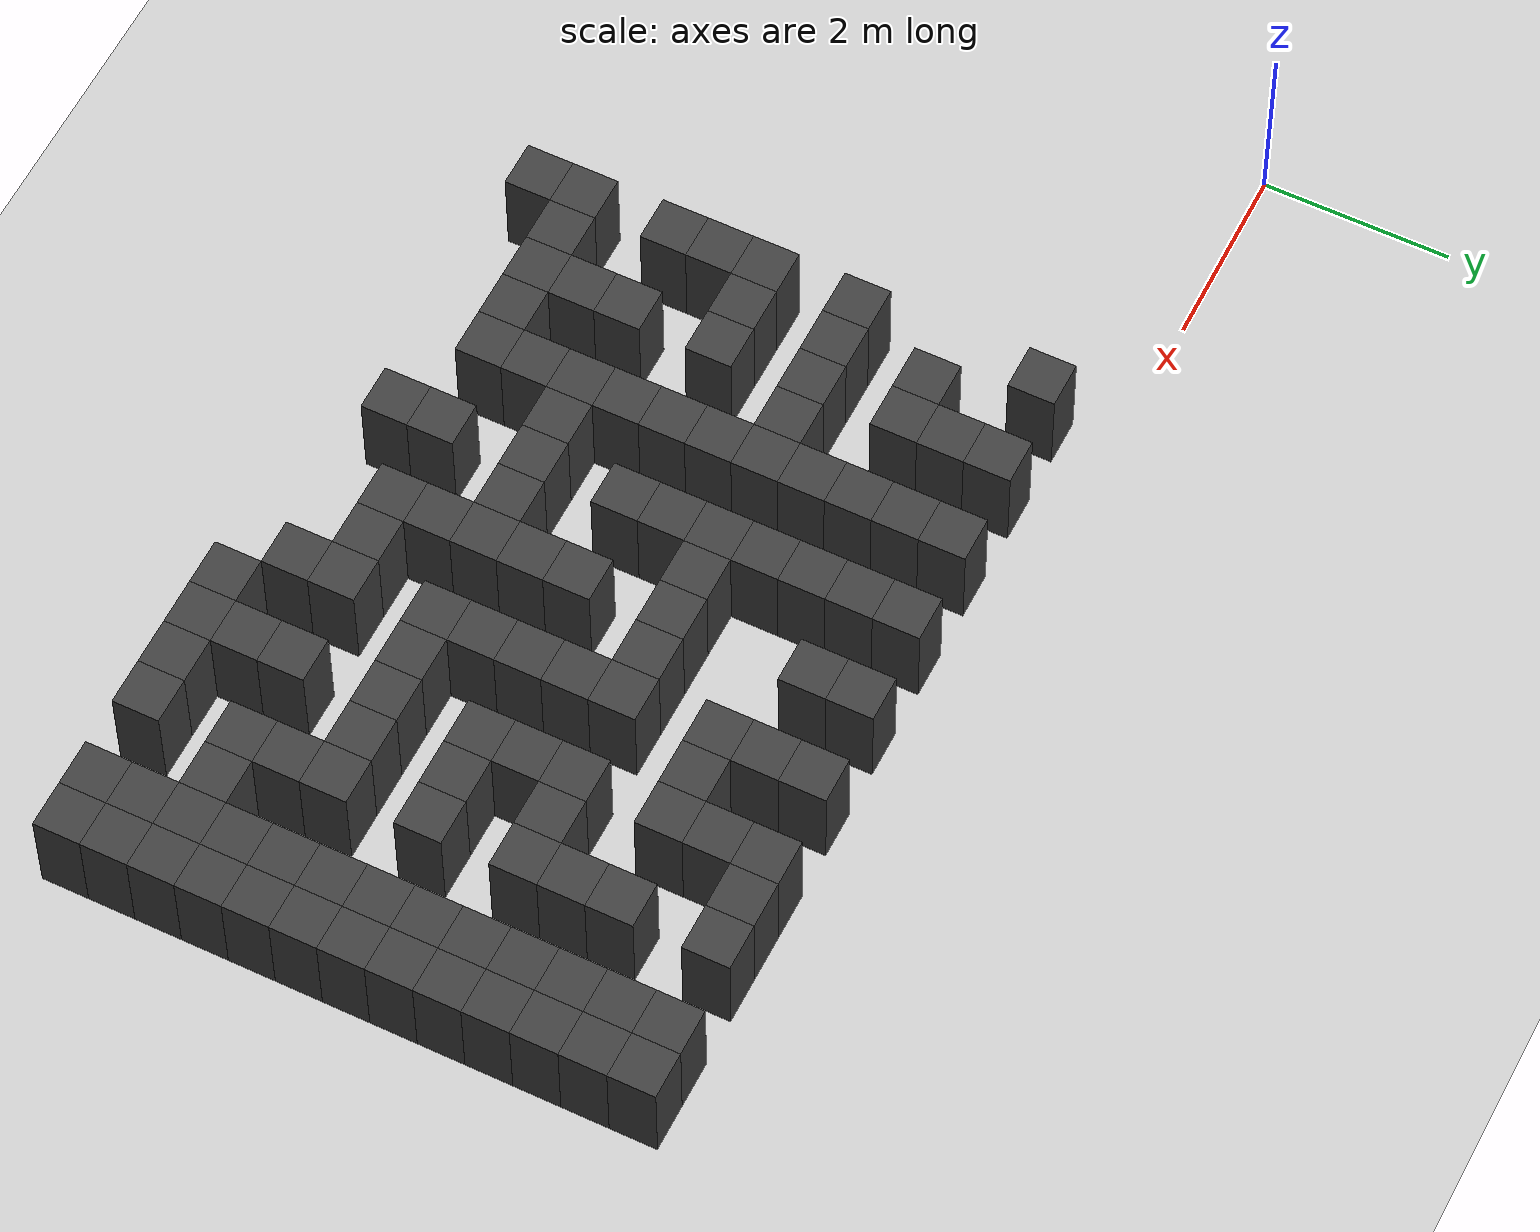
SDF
<sdf version="1.7">
 <world name="map_18596">
  <model name="ground_plane">
   <static>true</static>
   <link name="link">
    <collision name="collision">
     <geometry><plane><normal>0 0 1</normal><size>200 200</size></plane></geometry>
    </collision>
    <visual name="visual">
     <geometry><plane><normal>0 0 1</normal><size>200 200</size></plane></geometry>
     <material><ambient>0.8 0.8 0.8 1</ambient><diffuse>0.8 0.8 0.8 1</diffuse></material>
    </visual>
   </link>
  </model>
  <model name="maze_environment">
   <static>true</static>
   <link name="wall_685">
    <pose>3.750 -0.750 0.500 0 0 0</pose>
    <collision name="col"><geometry><box><size>0.5 0.5 1.0</size></box></geometry></collision>
    <visual name="vis">
     <geometry><box><size>0.5 0.5 1.0</size></box></geometry>
     <material><ambient>0.15 0.15 0.15 1</ambient><diffuse>0.25 0.25 0.25 1</diffuse></material>
    </visual>
   </link>
   <link name="wall_686">
    <pose>4.750 -0.750 0.500 0 0 0</pose>
    <collision name="col"><geometry><box><size>0.5 0.5 1.0</size></box></geometry></collision>
    <visual name="vis">
     <geometry><box><size>0.5 0.5 1.0</size></box></geometry>
     <material><ambient>0.15 0.15 0.15 1</ambient><diffuse>0.25 0.25 0.25 1</diffuse></material>
    </visual>
   </link>
   <link name="wall_687">
    <pose>5.750 -0.750 0.500 0 0 0</pose>
    <collision name="col"><geometry><box><size>0.5 0.5 1.0</size></box></geometry></collision>
    <visual name="vis">
     <geometry><box><size>0.5 0.5 1.0</size></box></geometry>
     <material><ambient>0.15 0.15 0.15 1</ambient><diffuse>0.25 0.25 0.25 1</diffuse></material>
    </visual>
   </link>
   <link name="wall_688">
    <pose>6.750 -0.750 0.500 0 0 0</pose>
    <collision name="col"><geometry><box><size>0.5 0.5 1.0</size></box></geometry></collision>
    <visual name="vis">
     <geometry><box><size>0.5 0.5 1.0</size></box></geometry>
     <material><ambient>0.15 0.15 0.15 1</ambient><diffuse>0.25 0.25 0.25 1</diffuse></material>
    </visual>
   </link>
   <link name="wall_689">
    <pose>7.750 -0.750 0.500 0 0 0</pose>
    <collision name="col"><geometry><box><size>0.5 0.5 1.0</size></box></geometry></collision>
    <visual name="vis">
     <geometry><box><size>0.5 0.5 1.0</size></box></geometry>
     <material><ambient>0.15 0.15 0.15 1</ambient><diffuse>0.25 0.25 0.25 1</diffuse></material>
    </visual>
   </link>
   <link name="wall_690">
    <pose>8.750 -0.750 0.500 0 0 0</pose>
    <collision name="col"><geometry><box><size>0.5 0.5 1.0</size></box></geometry></collision>
    <visual name="vis">
     <geometry><box><size>0.5 0.5 1.0</size></box></geometry>
     <material><ambient>0.15 0.15 0.15 1</ambient><diffuse>0.25 0.25 0.25 1</diffuse></material>
    </visual>
   </link>
   <link name="wall_691">
    <pose>9.750 -0.750 0.500 0 0 0</pose>
    <collision name="col"><geometry><box><size>0.5 0.5 1.0</size></box></geometry></collision>
    <visual name="vis">
     <geometry><box><size>0.5 0.5 1.0</size></box></geometry>
     <material><ambient>0.15 0.15 0.15 1</ambient><diffuse>0.25 0.25 0.25 1</diffuse></material>
    </visual>
   </link>
   <link name="wall_692">
    <pose>10.250 -0.750 0.500 0 0 0</pose>
    <collision name="col"><geometry><box><size>0.5 0.5 1.0</size></box></geometry></collision>
    <visual name="vis">
     <geometry><box><size>0.5 0.5 1.0</size></box></geometry>
     <material><ambient>0.15 0.15 0.15 1</ambient><diffuse>0.25 0.25 0.25 1</diffuse></material>
    </visual>
   </link>
   <link name="wall_693">
    <pose>10.750 -0.750 0.500 0 0 0</pose>
    <collision name="col"><geometry><box><size>0.5 0.5 1.0</size></box></geometry></collision>
    <visual name="vis">
     <geometry><box><size>0.5 0.5 1.0</size></box></geometry>
     <material><ambient>0.15 0.15 0.15 1</ambient><diffuse>0.25 0.25 0.25 1</diffuse></material>
    </visual>
   </link>
   <link name="wall_694">
    <pose>11.750 -0.750 0.500 0 0 0</pose>
    <collision name="col"><geometry><box><size>0.5 0.5 1.0</size></box></geometry></collision>
    <visual name="vis">
     <geometry><box><size>0.5 0.5 1.0</size></box></geometry>
     <material><ambient>0.15 0.15 0.15 1</ambient><diffuse>0.25 0.25 0.25 1</diffuse></material>
    </visual>
   </link>
   <link name="wall_695">
    <pose>12.250 -0.750 0.500 0 0 0</pose>
    <collision name="col"><geometry><box><size>0.5 0.5 1.0</size></box></geometry></collision>
    <visual name="vis">
     <geometry><box><size>0.5 0.5 1.0</size></box></geometry>
     <material><ambient>0.15 0.15 0.15 1</ambient><diffuse>0.25 0.25 0.25 1</diffuse></material>
    </visual>
   </link>
   <link name="wall_707">
    <pose>4.750 -1.250 0.500 0 0 0</pose>
    <collision name="col"><geometry><box><size>0.5 0.5 1.0</size></box></geometry></collision>
    <visual name="vis">
     <geometry><box><size>0.5 0.5 1.0</size></box></geometry>
     <material><ambient>0.15 0.15 0.15 1</ambient><diffuse>0.25 0.25 0.25 1</diffuse></material>
    </visual>
   </link>
   <link name="wall_708">
    <pose>5.750 -1.250 0.500 0 0 0</pose>
    <collision name="col"><geometry><box><size>0.5 0.5 1.0</size></box></geometry></collision>
    <visual name="vis">
     <geometry><box><size>0.5 0.5 1.0</size></box></geometry>
     <material><ambient>0.15 0.15 0.15 1</ambient><diffuse>0.25 0.25 0.25 1</diffuse></material>
    </visual>
   </link>
   <link name="wall_709">
    <pose>6.750 -1.250 0.500 0 0 0</pose>
    <collision name="col"><geometry><box><size>0.5 0.5 1.0</size></box></geometry></collision>
    <visual name="vis">
     <geometry><box><size>0.5 0.5 1.0</size></box></geometry>
     <material><ambient>0.15 0.15 0.15 1</ambient><diffuse>0.25 0.25 0.25 1</diffuse></material>
    </visual>
   </link>
   <link name="wall_710">
    <pose>7.750 -1.250 0.500 0 0 0</pose>
    <collision name="col"><geometry><box><size>0.5 0.5 1.0</size></box></geometry></collision>
    <visual name="vis">
     <geometry><box><size>0.5 0.5 1.0</size></box></geometry>
     <material><ambient>0.15 0.15 0.15 1</ambient><diffuse>0.25 0.25 0.25 1</diffuse></material>
    </visual>
   </link>
   <link name="wall_711">
    <pose>8.750 -1.250 0.500 0 0 0</pose>
    <collision name="col"><geometry><box><size>0.5 0.5 1.0</size></box></geometry></collision>
    <visual name="vis">
     <geometry><box><size>0.5 0.5 1.0</size></box></geometry>
     <material><ambient>0.15 0.15 0.15 1</ambient><diffuse>0.25 0.25 0.25 1</diffuse></material>
    </visual>
   </link>
   <link name="wall_712">
    <pose>9.750 -1.250 0.500 0 0 0</pose>
    <collision name="col"><geometry><box><size>0.5 0.5 1.0</size></box></geometry></collision>
    <visual name="vis">
     <geometry><box><size>0.5 0.5 1.0</size></box></geometry>
     <material><ambient>0.15 0.15 0.15 1</ambient><diffuse>0.25 0.25 0.25 1</diffuse></material>
    </visual>
   </link>
   <link name="wall_713">
    <pose>11.750 -1.250 0.500 0 0 0</pose>
    <collision name="col"><geometry><box><size>0.5 0.5 1.0</size></box></geometry></collision>
    <visual name="vis">
     <geometry><box><size>0.5 0.5 1.0</size></box></geometry>
     <material><ambient>0.15 0.15 0.15 1</ambient><diffuse>0.25 0.25 0.25 1</diffuse></material>
    </visual>
   </link>
   <link name="wall_714">
    <pose>12.250 -1.250 0.500 0 0 0</pose>
    <collision name="col"><geometry><box><size>0.5 0.5 1.0</size></box></geometry></collision>
    <visual name="vis">
     <geometry><box><size>0.5 0.5 1.0</size></box></geometry>
     <material><ambient>0.15 0.15 0.15 1</ambient><diffuse>0.25 0.25 0.25 1</diffuse></material>
    </visual>
   </link>
   <link name="wall_736">
    <pose>4.250 -1.750 0.500 0 0 0</pose>
    <collision name="col"><geometry><box><size>0.5 0.5 1.0</size></box></geometry></collision>
    <visual name="vis">
     <geometry><box><size>0.5 0.5 1.0</size></box></geometry>
     <material><ambient>0.15 0.15 0.15 1</ambient><diffuse>0.25 0.25 0.25 1</diffuse></material>
    </visual>
   </link>
   <link name="wall_737">
    <pose>4.750 -1.750 0.500 0 0 0</pose>
    <collision name="col"><geometry><box><size>0.5 0.5 1.0</size></box></geometry></collision>
    <visual name="vis">
     <geometry><box><size>0.5 0.5 1.0</size></box></geometry>
     <material><ambient>0.15 0.15 0.15 1</ambient><diffuse>0.25 0.25 0.25 1</diffuse></material>
    </visual>
   </link>
   <link name="wall_738">
    <pose>5.750 -1.750 0.500 0 0 0</pose>
    <collision name="col"><geometry><box><size>0.5 0.5 1.0</size></box></geometry></collision>
    <visual name="vis">
     <geometry><box><size>0.5 0.5 1.0</size></box></geometry>
     <material><ambient>0.15 0.15 0.15 1</ambient><diffuse>0.25 0.25 0.25 1</diffuse></material>
    </visual>
   </link>
   <link name="wall_739">
    <pose>6.750 -1.750 0.500 0 0 0</pose>
    <collision name="col"><geometry><box><size>0.5 0.5 1.0</size></box></geometry></collision>
    <visual name="vis">
     <geometry><box><size>0.5 0.5 1.0</size></box></geometry>
     <material><ambient>0.15 0.15 0.15 1</ambient><diffuse>0.25 0.25 0.25 1</diffuse></material>
    </visual>
   </link>
   <link name="wall_740">
    <pose>8.750 -1.750 0.500 0 0 0</pose>
    <collision name="col"><geometry><box><size>0.5 0.5 1.0</size></box></geometry></collision>
    <visual name="vis">
     <geometry><box><size>0.5 0.5 1.0</size></box></geometry>
     <material><ambient>0.15 0.15 0.15 1</ambient><diffuse>0.25 0.25 0.25 1</diffuse></material>
    </visual>
   </link>
   <link name="wall_741">
    <pose>9.250 -1.750 0.500 0 0 0</pose>
    <collision name="col"><geometry><box><size>0.5 0.5 1.0</size></box></geometry></collision>
    <visual name="vis">
     <geometry><box><size>0.5 0.5 1.0</size></box></geometry>
     <material><ambient>0.15 0.15 0.15 1</ambient><diffuse>0.25 0.25 0.25 1</diffuse></material>
    </visual>
   </link>
   <link name="wall_742">
    <pose>9.750 -1.750 0.500 0 0 0</pose>
    <collision name="col"><geometry><box><size>0.5 0.5 1.0</size></box></geometry></collision>
    <visual name="vis">
     <geometry><box><size>0.5 0.5 1.0</size></box></geometry>
     <material><ambient>0.15 0.15 0.15 1</ambient><diffuse>0.25 0.25 0.25 1</diffuse></material>
    </visual>
   </link>
   <link name="wall_743">
    <pose>10.750 -1.750 0.500 0 0 0</pose>
    <collision name="col"><geometry><box><size>0.5 0.5 1.0</size></box></geometry></collision>
    <visual name="vis">
     <geometry><box><size>0.5 0.5 1.0</size></box></geometry>
     <material><ambient>0.15 0.15 0.15 1</ambient><diffuse>0.25 0.25 0.25 1</diffuse></material>
    </visual>
   </link>
   <link name="wall_744">
    <pose>11.750 -1.750 0.500 0 0 0</pose>
    <collision name="col"><geometry><box><size>0.5 0.5 1.0</size></box></geometry></collision>
    <visual name="vis">
     <geometry><box><size>0.5 0.5 1.0</size></box></geometry>
     <material><ambient>0.15 0.15 0.15 1</ambient><diffuse>0.25 0.25 0.25 1</diffuse></material>
    </visual>
   </link>
   <link name="wall_745">
    <pose>12.250 -1.750 0.500 0 0 0</pose>
    <collision name="col"><geometry><box><size>0.5 0.5 1.0</size></box></geometry></collision>
    <visual name="vis">
     <geometry><box><size>0.5 0.5 1.0</size></box></geometry>
     <material><ambient>0.15 0.15 0.15 1</ambient><diffuse>0.25 0.25 0.25 1</diffuse></material>
    </visual>
   </link>
   <link name="wall_755">
    <pose>5.750 -2.250 0.500 0 0 0</pose>
    <collision name="col"><geometry><box><size>0.5 0.5 1.0</size></box></geometry></collision>
    <visual name="vis">
     <geometry><box><size>0.5 0.5 1.0</size></box></geometry>
     <material><ambient>0.15 0.15 0.15 1</ambient><diffuse>0.25 0.25 0.25 1</diffuse></material>
    </visual>
   </link>
   <link name="wall_756">
    <pose>6.750 -2.250 0.500 0 0 0</pose>
    <collision name="col"><geometry><box><size>0.5 0.5 1.0</size></box></geometry></collision>
    <visual name="vis">
     <geometry><box><size>0.5 0.5 1.0</size></box></geometry>
     <material><ambient>0.15 0.15 0.15 1</ambient><diffuse>0.25 0.25 0.25 1</diffuse></material>
    </visual>
   </link>
   <link name="wall_757">
    <pose>10.750 -2.250 0.500 0 0 0</pose>
    <collision name="col"><geometry><box><size>0.5 0.5 1.0</size></box></geometry></collision>
    <visual name="vis">
     <geometry><box><size>0.5 0.5 1.0</size></box></geometry>
     <material><ambient>0.15 0.15 0.15 1</ambient><diffuse>0.25 0.25 0.25 1</diffuse></material>
    </visual>
   </link>
   <link name="wall_758">
    <pose>11.750 -2.250 0.500 0 0 0</pose>
    <collision name="col"><geometry><box><size>0.5 0.5 1.0</size></box></geometry></collision>
    <visual name="vis">
     <geometry><box><size>0.5 0.5 1.0</size></box></geometry>
     <material><ambient>0.15 0.15 0.15 1</ambient><diffuse>0.25 0.25 0.25 1</diffuse></material>
    </visual>
   </link>
   <link name="wall_759">
    <pose>12.250 -2.250 0.500 0 0 0</pose>
    <collision name="col"><geometry><box><size>0.5 0.5 1.0</size></box></geometry></collision>
    <visual name="vis">
     <geometry><box><size>0.5 0.5 1.0</size></box></geometry>
     <material><ambient>0.15 0.15 0.15 1</ambient><diffuse>0.25 0.25 0.25 1</diffuse></material>
    </visual>
   </link>
   <link name="wall_782">
    <pose>3.750 -2.750 0.500 0 0 0</pose>
    <collision name="col"><geometry><box><size>0.5 0.5 1.0</size></box></geometry></collision>
    <visual name="vis">
     <geometry><box><size>0.5 0.5 1.0</size></box></geometry>
     <material><ambient>0.15 0.15 0.15 1</ambient><diffuse>0.25 0.25 0.25 1</diffuse></material>
    </visual>
   </link>
   <link name="wall_783">
    <pose>4.250 -2.750 0.500 0 0 0</pose>
    <collision name="col"><geometry><box><size>0.5 0.5 1.0</size></box></geometry></collision>
    <visual name="vis">
     <geometry><box><size>0.5 0.5 1.0</size></box></geometry>
     <material><ambient>0.15 0.15 0.15 1</ambient><diffuse>0.25 0.25 0.25 1</diffuse></material>
    </visual>
   </link>
   <link name="wall_784">
    <pose>4.750 -2.750 0.500 0 0 0</pose>
    <collision name="col"><geometry><box><size>0.5 0.5 1.0</size></box></geometry></collision>
    <visual name="vis">
     <geometry><box><size>0.5 0.5 1.0</size></box></geometry>
     <material><ambient>0.15 0.15 0.15 1</ambient><diffuse>0.25 0.25 0.25 1</diffuse></material>
    </visual>
   </link>
   <link name="wall_785">
    <pose>5.250 -2.750 0.500 0 0 0</pose>
    <collision name="col"><geometry><box><size>0.5 0.5 1.0</size></box></geometry></collision>
    <visual name="vis">
     <geometry><box><size>0.5 0.5 1.0</size></box></geometry>
     <material><ambient>0.15 0.15 0.15 1</ambient><diffuse>0.25 0.25 0.25 1</diffuse></material>
    </visual>
   </link>
   <link name="wall_786">
    <pose>5.750 -2.750 0.500 0 0 0</pose>
    <collision name="col"><geometry><box><size>0.5 0.5 1.0</size></box></geometry></collision>
    <visual name="vis">
     <geometry><box><size>0.5 0.5 1.0</size></box></geometry>
     <material><ambient>0.15 0.15 0.15 1</ambient><diffuse>0.25 0.25 0.25 1</diffuse></material>
    </visual>
   </link>
   <link name="wall_787">
    <pose>6.750 -2.750 0.500 0 0 0</pose>
    <collision name="col"><geometry><box><size>0.5 0.5 1.0</size></box></geometry></collision>
    <visual name="vis">
     <geometry><box><size>0.5 0.5 1.0</size></box></geometry>
     <material><ambient>0.15 0.15 0.15 1</ambient><diffuse>0.25 0.25 0.25 1</diffuse></material>
    </visual>
   </link>
   <link name="wall_788">
    <pose>7.250 -2.750 0.500 0 0 0</pose>
    <collision name="col"><geometry><box><size>0.5 0.5 1.0</size></box></geometry></collision>
    <visual name="vis">
     <geometry><box><size>0.5 0.5 1.0</size></box></geometry>
     <material><ambient>0.15 0.15 0.15 1</ambient><diffuse>0.25 0.25 0.25 1</diffuse></material>
    </visual>
   </link>
   <link name="wall_789">
    <pose>7.750 -2.750 0.500 0 0 0</pose>
    <collision name="col"><geometry><box><size>0.5 0.5 1.0</size></box></geometry></collision>
    <visual name="vis">
     <geometry><box><size>0.5 0.5 1.0</size></box></geometry>
     <material><ambient>0.15 0.15 0.15 1</ambient><diffuse>0.25 0.25 0.25 1</diffuse></material>
    </visual>
   </link>
   <link name="wall_790">
    <pose>8.250 -2.750 0.500 0 0 0</pose>
    <collision name="col"><geometry><box><size>0.5 0.5 1.0</size></box></geometry></collision>
    <visual name="vis">
     <geometry><box><size>0.5 0.5 1.0</size></box></geometry>
     <material><ambient>0.15 0.15 0.15 1</ambient><diffuse>0.25 0.25 0.25 1</diffuse></material>
    </visual>
   </link>
   <link name="wall_791">
    <pose>8.750 -2.750 0.500 0 0 0</pose>
    <collision name="col"><geometry><box><size>0.5 0.5 1.0</size></box></geometry></collision>
    <visual name="vis">
     <geometry><box><size>0.5 0.5 1.0</size></box></geometry>
     <material><ambient>0.15 0.15 0.15 1</ambient><diffuse>0.25 0.25 0.25 1</diffuse></material>
    </visual>
   </link>
   <link name="wall_792">
    <pose>9.750 -2.750 0.500 0 0 0</pose>
    <collision name="col"><geometry><box><size>0.5 0.5 1.0</size></box></geometry></collision>
    <visual name="vis">
     <geometry><box><size>0.5 0.5 1.0</size></box></geometry>
     <material><ambient>0.15 0.15 0.15 1</ambient><diffuse>0.25 0.25 0.25 1</diffuse></material>
    </visual>
   </link>
   <link name="wall_793">
    <pose>10.250 -2.750 0.500 0 0 0</pose>
    <collision name="col"><geometry><box><size>0.5 0.5 1.0</size></box></geometry></collision>
    <visual name="vis">
     <geometry><box><size>0.5 0.5 1.0</size></box></geometry>
     <material><ambient>0.15 0.15 0.15 1</ambient><diffuse>0.25 0.25 0.25 1</diffuse></material>
    </visual>
   </link>
   <link name="wall_794">
    <pose>10.750 -2.750 0.500 0 0 0</pose>
    <collision name="col"><geometry><box><size>0.5 0.5 1.0</size></box></geometry></collision>
    <visual name="vis">
     <geometry><box><size>0.5 0.5 1.0</size></box></geometry>
     <material><ambient>0.15 0.15 0.15 1</ambient><diffuse>0.25 0.25 0.25 1</diffuse></material>
    </visual>
   </link>
   <link name="wall_795">
    <pose>11.750 -2.750 0.500 0 0 0</pose>
    <collision name="col"><geometry><box><size>0.5 0.5 1.0</size></box></geometry></collision>
    <visual name="vis">
     <geometry><box><size>0.5 0.5 1.0</size></box></geometry>
     <material><ambient>0.15 0.15 0.15 1</ambient><diffuse>0.25 0.25 0.25 1</diffuse></material>
    </visual>
   </link>
   <link name="wall_796">
    <pose>12.250 -2.750 0.500 0 0 0</pose>
    <collision name="col"><geometry><box><size>0.5 0.5 1.0</size></box></geometry></collision>
    <visual name="vis">
     <geometry><box><size>0.5 0.5 1.0</size></box></geometry>
     <material><ambient>0.15 0.15 0.15 1</ambient><diffuse>0.25 0.25 0.25 1</diffuse></material>
    </visual>
   </link>
   <link name="wall_805">
    <pose>5.750 -3.250 0.500 0 0 0</pose>
    <collision name="col"><geometry><box><size>0.5 0.5 1.0</size></box></geometry></collision>
    <visual name="vis">
     <geometry><box><size>0.5 0.5 1.0</size></box></geometry>
     <material><ambient>0.15 0.15 0.15 1</ambient><diffuse>0.25 0.25 0.25 1</diffuse></material>
    </visual>
   </link>
   <link name="wall_806">
    <pose>6.750 -3.250 0.500 0 0 0</pose>
    <collision name="col"><geometry><box><size>0.5 0.5 1.0</size></box></geometry></collision>
    <visual name="vis">
     <geometry><box><size>0.5 0.5 1.0</size></box></geometry>
     <material><ambient>0.15 0.15 0.15 1</ambient><diffuse>0.25 0.25 0.25 1</diffuse></material>
    </visual>
   </link>
   <link name="wall_807">
    <pose>8.750 -3.250 0.500 0 0 0</pose>
    <collision name="col"><geometry><box><size>0.5 0.5 1.0</size></box></geometry></collision>
    <visual name="vis">
     <geometry><box><size>0.5 0.5 1.0</size></box></geometry>
     <material><ambient>0.15 0.15 0.15 1</ambient><diffuse>0.25 0.25 0.25 1</diffuse></material>
    </visual>
   </link>
   <link name="wall_808">
    <pose>9.750 -3.250 0.500 0 0 0</pose>
    <collision name="col"><geometry><box><size>0.5 0.5 1.0</size></box></geometry></collision>
    <visual name="vis">
     <geometry><box><size>0.5 0.5 1.0</size></box></geometry>
     <material><ambient>0.15 0.15 0.15 1</ambient><diffuse>0.25 0.25 0.25 1</diffuse></material>
    </visual>
   </link>
   <link name="wall_809">
    <pose>11.750 -3.250 0.500 0 0 0</pose>
    <collision name="col"><geometry><box><size>0.5 0.5 1.0</size></box></geometry></collision>
    <visual name="vis">
     <geometry><box><size>0.5 0.5 1.0</size></box></geometry>
     <material><ambient>0.15 0.15 0.15 1</ambient><diffuse>0.25 0.25 0.25 1</diffuse></material>
    </visual>
   </link>
   <link name="wall_810">
    <pose>12.250 -3.250 0.500 0 0 0</pose>
    <collision name="col"><geometry><box><size>0.5 0.5 1.0</size></box></geometry></collision>
    <visual name="vis">
     <geometry><box><size>0.5 0.5 1.0</size></box></geometry>
     <material><ambient>0.15 0.15 0.15 1</ambient><diffuse>0.25 0.25 0.25 1</diffuse></material>
    </visual>
   </link>
   <link name="wall_831">
    <pose>3.750 -3.750 0.500 0 0 0</pose>
    <collision name="col"><geometry><box><size>0.5 0.5 1.0</size></box></geometry></collision>
    <visual name="vis">
     <geometry><box><size>0.5 0.5 1.0</size></box></geometry>
     <material><ambient>0.15 0.15 0.15 1</ambient><diffuse>0.25 0.25 0.25 1</diffuse></material>
    </visual>
   </link>
   <link name="wall_832">
    <pose>4.250 -3.750 0.500 0 0 0</pose>
    <collision name="col"><geometry><box><size>0.5 0.5 1.0</size></box></geometry></collision>
    <visual name="vis">
     <geometry><box><size>0.5 0.5 1.0</size></box></geometry>
     <material><ambient>0.15 0.15 0.15 1</ambient><diffuse>0.25 0.25 0.25 1</diffuse></material>
    </visual>
   </link>
   <link name="wall_833">
    <pose>4.750 -3.750 0.500 0 0 0</pose>
    <collision name="col"><geometry><box><size>0.5 0.5 1.0</size></box></geometry></collision>
    <visual name="vis">
     <geometry><box><size>0.5 0.5 1.0</size></box></geometry>
     <material><ambient>0.15 0.15 0.15 1</ambient><diffuse>0.25 0.25 0.25 1</diffuse></material>
    </visual>
   </link>
   <link name="wall_834">
    <pose>5.750 -3.750 0.500 0 0 0</pose>
    <collision name="col"><geometry><box><size>0.5 0.5 1.0</size></box></geometry></collision>
    <visual name="vis">
     <geometry><box><size>0.5 0.5 1.0</size></box></geometry>
     <material><ambient>0.15 0.15 0.15 1</ambient><diffuse>0.25 0.25 0.25 1</diffuse></material>
    </visual>
   </link>
   <link name="wall_835">
    <pose>6.750 -3.750 0.500 0 0 0</pose>
    <collision name="col"><geometry><box><size>0.5 0.5 1.0</size></box></geometry></collision>
    <visual name="vis">
     <geometry><box><size>0.5 0.5 1.0</size></box></geometry>
     <material><ambient>0.15 0.15 0.15 1</ambient><diffuse>0.25 0.25 0.25 1</diffuse></material>
    </visual>
   </link>
   <link name="wall_836">
    <pose>7.750 -3.750 0.500 0 0 0</pose>
    <collision name="col"><geometry><box><size>0.5 0.5 1.0</size></box></geometry></collision>
    <visual name="vis">
     <geometry><box><size>0.5 0.5 1.0</size></box></geometry>
     <material><ambient>0.15 0.15 0.15 1</ambient><diffuse>0.25 0.25 0.25 1</diffuse></material>
    </visual>
   </link>
   <link name="wall_837">
    <pose>8.750 -3.750 0.500 0 0 0</pose>
    <collision name="col"><geometry><box><size>0.5 0.5 1.0</size></box></geometry></collision>
    <visual name="vis">
     <geometry><box><size>0.5 0.5 1.0</size></box></geometry>
     <material><ambient>0.15 0.15 0.15 1</ambient><diffuse>0.25 0.25 0.25 1</diffuse></material>
    </visual>
   </link>
   <link name="wall_838">
    <pose>9.750 -3.750 0.500 0 0 0</pose>
    <collision name="col"><geometry><box><size>0.5 0.5 1.0</size></box></geometry></collision>
    <visual name="vis">
     <geometry><box><size>0.5 0.5 1.0</size></box></geometry>
     <material><ambient>0.15 0.15 0.15 1</ambient><diffuse>0.25 0.25 0.25 1</diffuse></material>
    </visual>
   </link>
   <link name="wall_839">
    <pose>10.250 -3.750 0.500 0 0 0</pose>
    <collision name="col"><geometry><box><size>0.5 0.5 1.0</size></box></geometry></collision>
    <visual name="vis">
     <geometry><box><size>0.5 0.5 1.0</size></box></geometry>
     <material><ambient>0.15 0.15 0.15 1</ambient><diffuse>0.25 0.25 0.25 1</diffuse></material>
    </visual>
   </link>
   <link name="wall_840">
    <pose>10.750 -3.750 0.500 0 0 0</pose>
    <collision name="col"><geometry><box><size>0.5 0.5 1.0</size></box></geometry></collision>
    <visual name="vis">
     <geometry><box><size>0.5 0.5 1.0</size></box></geometry>
     <material><ambient>0.15 0.15 0.15 1</ambient><diffuse>0.25 0.25 0.25 1</diffuse></material>
    </visual>
   </link>
   <link name="wall_841">
    <pose>11.750 -3.750 0.500 0 0 0</pose>
    <collision name="col"><geometry><box><size>0.5 0.5 1.0</size></box></geometry></collision>
    <visual name="vis">
     <geometry><box><size>0.5 0.5 1.0</size></box></geometry>
     <material><ambient>0.15 0.15 0.15 1</ambient><diffuse>0.25 0.25 0.25 1</diffuse></material>
    </visual>
   </link>
   <link name="wall_842">
    <pose>12.250 -3.750 0.500 0 0 0</pose>
    <collision name="col"><geometry><box><size>0.5 0.5 1.0</size></box></geometry></collision>
    <visual name="vis">
     <geometry><box><size>0.5 0.5 1.0</size></box></geometry>
     <material><ambient>0.15 0.15 0.15 1</ambient><diffuse>0.25 0.25 0.25 1</diffuse></material>
    </visual>
   </link>
   <link name="wall_851">
    <pose>3.750 -4.250 0.500 0 0 0</pose>
    <collision name="col"><geometry><box><size>0.5 0.5 1.0</size></box></geometry></collision>
    <visual name="vis">
     <geometry><box><size>0.5 0.5 1.0</size></box></geometry>
     <material><ambient>0.15 0.15 0.15 1</ambient><diffuse>0.25 0.25 0.25 1</diffuse></material>
    </visual>
   </link>
   <link name="wall_852">
    <pose>5.750 -4.250 0.500 0 0 0</pose>
    <collision name="col"><geometry><box><size>0.5 0.5 1.0</size></box></geometry></collision>
    <visual name="vis">
     <geometry><box><size>0.5 0.5 1.0</size></box></geometry>
     <material><ambient>0.15 0.15 0.15 1</ambient><diffuse>0.25 0.25 0.25 1</diffuse></material>
    </visual>
   </link>
   <link name="wall_853">
    <pose>7.750 -4.250 0.500 0 0 0</pose>
    <collision name="col"><geometry><box><size>0.5 0.5 1.0</size></box></geometry></collision>
    <visual name="vis">
     <geometry><box><size>0.5 0.5 1.0</size></box></geometry>
     <material><ambient>0.15 0.15 0.15 1</ambient><diffuse>0.25 0.25 0.25 1</diffuse></material>
    </visual>
   </link>
   <link name="wall_854">
    <pose>8.750 -4.250 0.500 0 0 0</pose>
    <collision name="col"><geometry><box><size>0.5 0.5 1.0</size></box></geometry></collision>
    <visual name="vis">
     <geometry><box><size>0.5 0.5 1.0</size></box></geometry>
     <material><ambient>0.15 0.15 0.15 1</ambient><diffuse>0.25 0.25 0.25 1</diffuse></material>
    </visual>
   </link>
   <link name="wall_855">
    <pose>11.750 -4.250 0.500 0 0 0</pose>
    <collision name="col"><geometry><box><size>0.5 0.5 1.0</size></box></geometry></collision>
    <visual name="vis">
     <geometry><box><size>0.5 0.5 1.0</size></box></geometry>
     <material><ambient>0.15 0.15 0.15 1</ambient><diffuse>0.25 0.25 0.25 1</diffuse></material>
    </visual>
   </link>
   <link name="wall_856">
    <pose>12.250 -4.250 0.500 0 0 0</pose>
    <collision name="col"><geometry><box><size>0.5 0.5 1.0</size></box></geometry></collision>
    <visual name="vis">
     <geometry><box><size>0.5 0.5 1.0</size></box></geometry>
     <material><ambient>0.15 0.15 0.15 1</ambient><diffuse>0.25 0.25 0.25 1</diffuse></material>
    </visual>
   </link>
   <link name="wall_879">
    <pose>3.750 -4.750 0.500 0 0 0</pose>
    <collision name="col"><geometry><box><size>0.5 0.5 1.0</size></box></geometry></collision>
    <visual name="vis">
     <geometry><box><size>0.5 0.5 1.0</size></box></geometry>
     <material><ambient>0.15 0.15 0.15 1</ambient><diffuse>0.25 0.25 0.25 1</diffuse></material>
    </visual>
   </link>
   <link name="wall_880">
    <pose>4.750 -4.750 0.500 0 0 0</pose>
    <collision name="col"><geometry><box><size>0.5 0.5 1.0</size></box></geometry></collision>
    <visual name="vis">
     <geometry><box><size>0.5 0.5 1.0</size></box></geometry>
     <material><ambient>0.15 0.15 0.15 1</ambient><diffuse>0.25 0.25 0.25 1</diffuse></material>
    </visual>
   </link>
   <link name="wall_881">
    <pose>5.750 -4.750 0.500 0 0 0</pose>
    <collision name="col"><geometry><box><size>0.5 0.5 1.0</size></box></geometry></collision>
    <visual name="vis">
     <geometry><box><size>0.5 0.5 1.0</size></box></geometry>
     <material><ambient>0.15 0.15 0.15 1</ambient><diffuse>0.25 0.25 0.25 1</diffuse></material>
    </visual>
   </link>
   <link name="wall_882">
    <pose>6.250 -4.750 0.500 0 0 0</pose>
    <collision name="col"><geometry><box><size>0.5 0.5 1.0</size></box></geometry></collision>
    <visual name="vis">
     <geometry><box><size>0.5 0.5 1.0</size></box></geometry>
     <material><ambient>0.15 0.15 0.15 1</ambient><diffuse>0.25 0.25 0.25 1</diffuse></material>
    </visual>
   </link>
   <link name="wall_883">
    <pose>6.750 -4.750 0.500 0 0 0</pose>
    <collision name="col"><geometry><box><size>0.5 0.5 1.0</size></box></geometry></collision>
    <visual name="vis">
     <geometry><box><size>0.5 0.5 1.0</size></box></geometry>
     <material><ambient>0.15 0.15 0.15 1</ambient><diffuse>0.25 0.25 0.25 1</diffuse></material>
    </visual>
   </link>
   <link name="wall_884">
    <pose>7.250 -4.750 0.500 0 0 0</pose>
    <collision name="col"><geometry><box><size>0.5 0.5 1.0</size></box></geometry></collision>
    <visual name="vis">
     <geometry><box><size>0.5 0.5 1.0</size></box></geometry>
     <material><ambient>0.15 0.15 0.15 1</ambient><diffuse>0.25 0.25 0.25 1</diffuse></material>
    </visual>
   </link>
   <link name="wall_885">
    <pose>7.750 -4.750 0.500 0 0 0</pose>
    <collision name="col"><geometry><box><size>0.5 0.5 1.0</size></box></geometry></collision>
    <visual name="vis">
     <geometry><box><size>0.5 0.5 1.0</size></box></geometry>
     <material><ambient>0.15 0.15 0.15 1</ambient><diffuse>0.25 0.25 0.25 1</diffuse></material>
    </visual>
   </link>
   <link name="wall_886">
    <pose>8.750 -4.750 0.500 0 0 0</pose>
    <collision name="col"><geometry><box><size>0.5 0.5 1.0</size></box></geometry></collision>
    <visual name="vis">
     <geometry><box><size>0.5 0.5 1.0</size></box></geometry>
     <material><ambient>0.15 0.15 0.15 1</ambient><diffuse>0.25 0.25 0.25 1</diffuse></material>
    </visual>
   </link>
   <link name="wall_887">
    <pose>9.250 -4.750 0.500 0 0 0</pose>
    <collision name="col"><geometry><box><size>0.5 0.5 1.0</size></box></geometry></collision>
    <visual name="vis">
     <geometry><box><size>0.5 0.5 1.0</size></box></geometry>
     <material><ambient>0.15 0.15 0.15 1</ambient><diffuse>0.25 0.25 0.25 1</diffuse></material>
    </visual>
   </link>
   <link name="wall_888">
    <pose>9.750 -4.750 0.500 0 0 0</pose>
    <collision name="col"><geometry><box><size>0.5 0.5 1.0</size></box></geometry></collision>
    <visual name="vis">
     <geometry><box><size>0.5 0.5 1.0</size></box></geometry>
     <material><ambient>0.15 0.15 0.15 1</ambient><diffuse>0.25 0.25 0.25 1</diffuse></material>
    </visual>
   </link>
   <link name="wall_889">
    <pose>10.250 -4.750 0.500 0 0 0</pose>
    <collision name="col"><geometry><box><size>0.5 0.5 1.0</size></box></geometry></collision>
    <visual name="vis">
     <geometry><box><size>0.5 0.5 1.0</size></box></geometry>
     <material><ambient>0.15 0.15 0.15 1</ambient><diffuse>0.25 0.25 0.25 1</diffuse></material>
    </visual>
   </link>
   <link name="wall_890">
    <pose>10.750 -4.750 0.500 0 0 0</pose>
    <collision name="col"><geometry><box><size>0.5 0.5 1.0</size></box></geometry></collision>
    <visual name="vis">
     <geometry><box><size>0.5 0.5 1.0</size></box></geometry>
     <material><ambient>0.15 0.15 0.15 1</ambient><diffuse>0.25 0.25 0.25 1</diffuse></material>
    </visual>
   </link>
   <link name="wall_891">
    <pose>11.750 -4.750 0.500 0 0 0</pose>
    <collision name="col"><geometry><box><size>0.5 0.5 1.0</size></box></geometry></collision>
    <visual name="vis">
     <geometry><box><size>0.5 0.5 1.0</size></box></geometry>
     <material><ambient>0.15 0.15 0.15 1</ambient><diffuse>0.25 0.25 0.25 1</diffuse></material>
    </visual>
   </link>
   <link name="wall_892">
    <pose>12.250 -4.750 0.500 0 0 0</pose>
    <collision name="col"><geometry><box><size>0.5 0.5 1.0</size></box></geometry></collision>
    <visual name="vis">
     <geometry><box><size>0.5 0.5 1.0</size></box></geometry>
     <material><ambient>0.15 0.15 0.15 1</ambient><diffuse>0.25 0.25 0.25 1</diffuse></material>
    </visual>
   </link>
   <link name="wall_901">
    <pose>4.750 -5.250 0.500 0 0 0</pose>
    <collision name="col"><geometry><box><size>0.5 0.5 1.0</size></box></geometry></collision>
    <visual name="vis">
     <geometry><box><size>0.5 0.5 1.0</size></box></geometry>
     <material><ambient>0.15 0.15 0.15 1</ambient><diffuse>0.25 0.25 0.25 1</diffuse></material>
    </visual>
   </link>
   <link name="wall_902">
    <pose>5.750 -5.250 0.500 0 0 0</pose>
    <collision name="col"><geometry><box><size>0.5 0.5 1.0</size></box></geometry></collision>
    <visual name="vis">
     <geometry><box><size>0.5 0.5 1.0</size></box></geometry>
     <material><ambient>0.15 0.15 0.15 1</ambient><diffuse>0.25 0.25 0.25 1</diffuse></material>
    </visual>
   </link>
   <link name="wall_903">
    <pose>7.750 -5.250 0.500 0 0 0</pose>
    <collision name="col"><geometry><box><size>0.5 0.5 1.0</size></box></geometry></collision>
    <visual name="vis">
     <geometry><box><size>0.5 0.5 1.0</size></box></geometry>
     <material><ambient>0.15 0.15 0.15 1</ambient><diffuse>0.25 0.25 0.25 1</diffuse></material>
    </visual>
   </link>
   <link name="wall_904">
    <pose>10.750 -5.250 0.500 0 0 0</pose>
    <collision name="col"><geometry><box><size>0.5 0.5 1.0</size></box></geometry></collision>
    <visual name="vis">
     <geometry><box><size>0.5 0.5 1.0</size></box></geometry>
     <material><ambient>0.15 0.15 0.15 1</ambient><diffuse>0.25 0.25 0.25 1</diffuse></material>
    </visual>
   </link>
   <link name="wall_905">
    <pose>11.750 -5.250 0.500 0 0 0</pose>
    <collision name="col"><geometry><box><size>0.5 0.5 1.0</size></box></geometry></collision>
    <visual name="vis">
     <geometry><box><size>0.5 0.5 1.0</size></box></geometry>
     <material><ambient>0.15 0.15 0.15 1</ambient><diffuse>0.25 0.25 0.25 1</diffuse></material>
    </visual>
   </link>
   <link name="wall_906">
    <pose>12.250 -5.250 0.500 0 0 0</pose>
    <collision name="col"><geometry><box><size>0.5 0.5 1.0</size></box></geometry></collision>
    <visual name="vis">
     <geometry><box><size>0.5 0.5 1.0</size></box></geometry>
     <material><ambient>0.15 0.15 0.15 1</ambient><diffuse>0.25 0.25 0.25 1</diffuse></material>
    </visual>
   </link>
   <link name="wall_926">
    <pose>3.750 -5.750 0.500 0 0 0</pose>
    <collision name="col"><geometry><box><size>0.5 0.5 1.0</size></box></geometry></collision>
    <visual name="vis">
     <geometry><box><size>0.5 0.5 1.0</size></box></geometry>
     <material><ambient>0.15 0.15 0.15 1</ambient><diffuse>0.25 0.25 0.25 1</diffuse></material>
    </visual>
   </link>
   <link name="wall_927">
    <pose>4.250 -5.750 0.500 0 0 0</pose>
    <collision name="col"><geometry><box><size>0.5 0.5 1.0</size></box></geometry></collision>
    <visual name="vis">
     <geometry><box><size>0.5 0.5 1.0</size></box></geometry>
     <material><ambient>0.15 0.15 0.15 1</ambient><diffuse>0.25 0.25 0.25 1</diffuse></material>
    </visual>
   </link>
   <link name="wall_928">
    <pose>4.750 -5.750 0.500 0 0 0</pose>
    <collision name="col"><geometry><box><size>0.5 0.5 1.0</size></box></geometry></collision>
    <visual name="vis">
     <geometry><box><size>0.5 0.5 1.0</size></box></geometry>
     <material><ambient>0.15 0.15 0.15 1</ambient><diffuse>0.25 0.25 0.25 1</diffuse></material>
    </visual>
   </link>
   <link name="wall_929">
    <pose>5.250 -5.750 0.500 0 0 0</pose>
    <collision name="col"><geometry><box><size>0.5 0.5 1.0</size></box></geometry></collision>
    <visual name="vis">
     <geometry><box><size>0.5 0.5 1.0</size></box></geometry>
     <material><ambient>0.15 0.15 0.15 1</ambient><diffuse>0.25 0.25 0.25 1</diffuse></material>
    </visual>
   </link>
   <link name="wall_930">
    <pose>5.750 -5.750 0.500 0 0 0</pose>
    <collision name="col"><geometry><box><size>0.5 0.5 1.0</size></box></geometry></collision>
    <visual name="vis">
     <geometry><box><size>0.5 0.5 1.0</size></box></geometry>
     <material><ambient>0.15 0.15 0.15 1</ambient><diffuse>0.25 0.25 0.25 1</diffuse></material>
    </visual>
   </link>
   <link name="wall_931">
    <pose>6.750 -5.750 0.500 0 0 0</pose>
    <collision name="col"><geometry><box><size>0.5 0.5 1.0</size></box></geometry></collision>
    <visual name="vis">
     <geometry><box><size>0.5 0.5 1.0</size></box></geometry>
     <material><ambient>0.15 0.15 0.15 1</ambient><diffuse>0.25 0.25 0.25 1</diffuse></material>
    </visual>
   </link>
   <link name="wall_932">
    <pose>7.750 -5.750 0.500 0 0 0</pose>
    <collision name="col"><geometry><box><size>0.5 0.5 1.0</size></box></geometry></collision>
    <visual name="vis">
     <geometry><box><size>0.5 0.5 1.0</size></box></geometry>
     <material><ambient>0.15 0.15 0.15 1</ambient><diffuse>0.25 0.25 0.25 1</diffuse></material>
    </visual>
   </link>
   <link name="wall_933">
    <pose>8.250 -5.750 0.500 0 0 0</pose>
    <collision name="col"><geometry><box><size>0.5 0.5 1.0</size></box></geometry></collision>
    <visual name="vis">
     <geometry><box><size>0.5 0.5 1.0</size></box></geometry>
     <material><ambient>0.15 0.15 0.15 1</ambient><diffuse>0.25 0.25 0.25 1</diffuse></material>
    </visual>
   </link>
   <link name="wall_934">
    <pose>8.750 -5.750 0.500 0 0 0</pose>
    <collision name="col"><geometry><box><size>0.5 0.5 1.0</size></box></geometry></collision>
    <visual name="vis">
     <geometry><box><size>0.5 0.5 1.0</size></box></geometry>
     <material><ambient>0.15 0.15 0.15 1</ambient><diffuse>0.25 0.25 0.25 1</diffuse></material>
    </visual>
   </link>
   <link name="wall_935">
    <pose>9.750 -5.750 0.500 0 0 0</pose>
    <collision name="col"><geometry><box><size>0.5 0.5 1.0</size></box></geometry></collision>
    <visual name="vis">
     <geometry><box><size>0.5 0.5 1.0</size></box></geometry>
     <material><ambient>0.15 0.15 0.15 1</ambient><diffuse>0.25 0.25 0.25 1</diffuse></material>
    </visual>
   </link>
   <link name="wall_936">
    <pose>10.750 -5.750 0.500 0 0 0</pose>
    <collision name="col"><geometry><box><size>0.5 0.5 1.0</size></box></geometry></collision>
    <visual name="vis">
     <geometry><box><size>0.5 0.5 1.0</size></box></geometry>
     <material><ambient>0.15 0.15 0.15 1</ambient><diffuse>0.25 0.25 0.25 1</diffuse></material>
    </visual>
   </link>
   <link name="wall_937">
    <pose>11.250 -5.750 0.500 0 0 0</pose>
    <collision name="col"><geometry><box><size>0.5 0.5 1.0</size></box></geometry></collision>
    <visual name="vis">
     <geometry><box><size>0.5 0.5 1.0</size></box></geometry>
     <material><ambient>0.15 0.15 0.15 1</ambient><diffuse>0.25 0.25 0.25 1</diffuse></material>
    </visual>
   </link>
   <link name="wall_938">
    <pose>11.750 -5.750 0.500 0 0 0</pose>
    <collision name="col"><geometry><box><size>0.5 0.5 1.0</size></box></geometry></collision>
    <visual name="vis">
     <geometry><box><size>0.5 0.5 1.0</size></box></geometry>
     <material><ambient>0.15 0.15 0.15 1</ambient><diffuse>0.25 0.25 0.25 1</diffuse></material>
    </visual>
   </link>
   <link name="wall_939">
    <pose>12.250 -5.750 0.500 0 0 0</pose>
    <collision name="col"><geometry><box><size>0.5 0.5 1.0</size></box></geometry></collision>
    <visual name="vis">
     <geometry><box><size>0.5 0.5 1.0</size></box></geometry>
     <material><ambient>0.15 0.15 0.15 1</ambient><diffuse>0.25 0.25 0.25 1</diffuse></material>
    </visual>
   </link>
   <link name="wall_951">
    <pose>3.750 -6.250 0.500 0 0 0</pose>
    <collision name="col"><geometry><box><size>0.5 0.5 1.0</size></box></geometry></collision>
    <visual name="vis">
     <geometry><box><size>0.5 0.5 1.0</size></box></geometry>
     <material><ambient>0.15 0.15 0.15 1</ambient><diffuse>0.25 0.25 0.25 1</diffuse></material>
    </visual>
   </link>
   <link name="wall_952">
    <pose>6.750 -6.250 0.500 0 0 0</pose>
    <collision name="col"><geometry><box><size>0.5 0.5 1.0</size></box></geometry></collision>
    <visual name="vis">
     <geometry><box><size>0.5 0.5 1.0</size></box></geometry>
     <material><ambient>0.15 0.15 0.15 1</ambient><diffuse>0.25 0.25 0.25 1</diffuse></material>
    </visual>
   </link>
   <link name="wall_953">
    <pose>8.750 -6.250 0.500 0 0 0</pose>
    <collision name="col"><geometry><box><size>0.5 0.5 1.0</size></box></geometry></collision>
    <visual name="vis">
     <geometry><box><size>0.5 0.5 1.0</size></box></geometry>
     <material><ambient>0.15 0.15 0.15 1</ambient><diffuse>0.25 0.25 0.25 1</diffuse></material>
    </visual>
   </link>
   <link name="wall_954">
    <pose>9.750 -6.250 0.500 0 0 0</pose>
    <collision name="col"><geometry><box><size>0.5 0.5 1.0</size></box></geometry></collision>
    <visual name="vis">
     <geometry><box><size>0.5 0.5 1.0</size></box></geometry>
     <material><ambient>0.15 0.15 0.15 1</ambient><diffuse>0.25 0.25 0.25 1</diffuse></material>
    </visual>
   </link>
   <link name="wall_955">
    <pose>11.750 -6.250 0.500 0 0 0</pose>
    <collision name="col"><geometry><box><size>0.5 0.5 1.0</size></box></geometry></collision>
    <visual name="vis">
     <geometry><box><size>0.5 0.5 1.0</size></box></geometry>
     <material><ambient>0.15 0.15 0.15 1</ambient><diffuse>0.25 0.25 0.25 1</diffuse></material>
    </visual>
   </link>
   <link name="wall_956">
    <pose>12.250 -6.250 0.500 0 0 0</pose>
    <collision name="col"><geometry><box><size>0.5 0.5 1.0</size></box></geometry></collision>
    <visual name="vis">
     <geometry><box><size>0.5 0.5 1.0</size></box></geometry>
     <material><ambient>0.15 0.15 0.15 1</ambient><diffuse>0.25 0.25 0.25 1</diffuse></material>
    </visual>
   </link>
   <link name="wall_986">
    <pose>9.250 -6.750 0.500 0 0 0</pose>
    <collision name="col"><geometry><box><size>0.5 0.5 1.0</size></box></geometry></collision>
    <visual name="vis">
     <geometry><box><size>0.5 0.5 1.0</size></box></geometry>
     <material><ambient>0.15 0.15 0.15 1</ambient><diffuse>0.25 0.25 0.25 1</diffuse></material>
    </visual>
   </link>
   <link name="wall_987">
    <pose>9.750 -6.750 0.500 0 0 0</pose>
    <collision name="col"><geometry><box><size>0.5 0.5 1.0</size></box></geometry></collision>
    <visual name="vis">
     <geometry><box><size>0.5 0.5 1.0</size></box></geometry>
     <material><ambient>0.15 0.15 0.15 1</ambient><diffuse>0.25 0.25 0.25 1</diffuse></material>
    </visual>
   </link>
   <link name="wall_988">
    <pose>10.250 -6.750 0.500 0 0 0</pose>
    <collision name="col"><geometry><box><size>0.5 0.5 1.0</size></box></geometry></collision>
    <visual name="vis">
     <geometry><box><size>0.5 0.5 1.0</size></box></geometry>
     <material><ambient>0.15 0.15 0.15 1</ambient><diffuse>0.25 0.25 0.25 1</diffuse></material>
    </visual>
   </link>
   <link name="wall_989">
    <pose>10.750 -6.750 0.500 0 0 0</pose>
    <collision name="col"><geometry><box><size>0.5 0.5 1.0</size></box></geometry></collision>
    <visual name="vis">
     <geometry><box><size>0.5 0.5 1.0</size></box></geometry>
     <material><ambient>0.15 0.15 0.15 1</ambient><diffuse>0.25 0.25 0.25 1</diffuse></material>
    </visual>
   </link>
   <link name="wall_990">
    <pose>11.750 -6.750 0.500 0 0 0</pose>
    <collision name="col"><geometry><box><size>0.5 0.5 1.0</size></box></geometry></collision>
    <visual name="vis">
     <geometry><box><size>0.5 0.5 1.0</size></box></geometry>
     <material><ambient>0.15 0.15 0.15 1</ambient><diffuse>0.25 0.25 0.25 1</diffuse></material>
    </visual>
   </link>
   <link name="wall_991">
    <pose>12.250 -6.750 0.500 0 0 0</pose>
    <collision name="col"><geometry><box><size>0.5 0.5 1.0</size></box></geometry></collision>
    <visual name="vis">
     <geometry><box><size>0.5 0.5 1.0</size></box></geometry>
     <material><ambient>0.15 0.15 0.15 1</ambient><diffuse>0.25 0.25 0.25 1</diffuse></material>
    </visual>
   </link>
  </model>
 </world>
</sdf>
